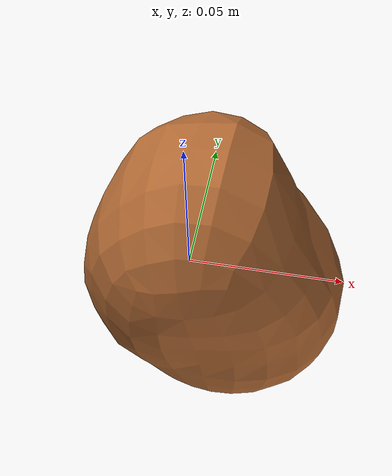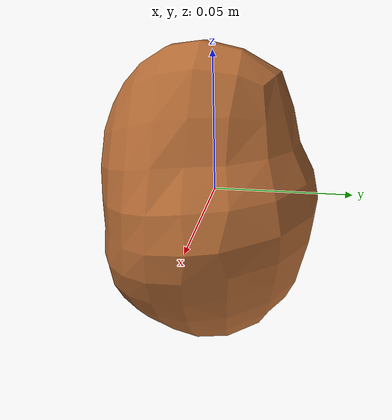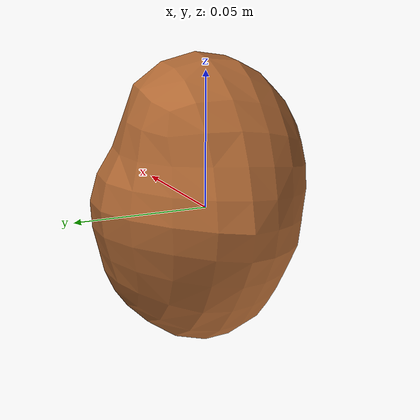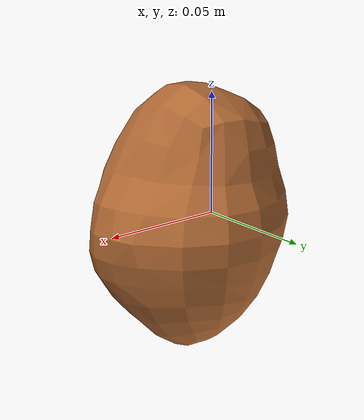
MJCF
<mujoco model="Potato_9">
  <compiler autolimits="true" boundmass="0.01" angle="radian"/>
  <default>
    <default class="/">
      <default class="__VISUAL_MJT__">
        <geom contype="0" conaffinity="0" group="0"/>
      </default>
      <default class="__STRUCTURAL_MJT__">
        <geom contype="8" conaffinity="15" group="4" friction="0.90000000000000002 0.90000000000000002 0.001" solref="0.025000000000000001 1" solimp="0.998 0.998 0.001"/>
      </default>
      <default class="__DYNAMIC_MJT__">
        <geom contype="1" conaffinity="15" group="4" friction="0.90000000000000002 0.90000000000000002 0.001" solref="0.025000000000000001 1" solimp="0.998 0.998 0.001"/>
      </default>
    </default>
  </default>
  <asset>
    <texture name="Potato1_Mat4" type="2d" file="Potato1_AlbedoTransparency.png"/>
    <material name="material_Potato1_Mat4" class="/" texture="Potato1_Mat4" specular="0.5" shininess="0.5" rgba="0.93382350000000003 0.57658390000000004 0.30211939999999998 1"/>
    <mesh name="Potato_9_potato_a9" class="/" file="Potato_9_potato_a9/Potato_9_potato_a9.obj" scale="1 1 1"/>
  </asset>
  <worldbody>
    <body name="Potato_9">
      <joint name="Potato_9_free" class="/" type="free" pos="0 0 0" axis="0 0 1" stiffness="0" range="0 0" armature="0" damping="0.10000000000000001" frictionloss="0"/>
      <body name="Potato_9_potato_a9" pos="0.0039300000000000003 -0.0029399999999999999 -0.0047000000000000002" quat="1 0 0 0">
        <geom name="Potato_9_potato_a9" class="__VISUAL_MJT__" type="mesh" material="material_Potato1_Mat4" shellinertia="true" mesh="Potato_9_potato_a9"/>
        <geom name="Potato_9_PrimitiveCollider_0" class="__DYNAMIC_MJT__" type="capsule" size="0.04027475044131279 0.014813680201768875" rgba="0 1 0 1" pos="0.0039299880154430866 0.0029365075752139091 0.0047027179971337318" quat="1.5172864424591529e-06 0.98892549348994019 0.14841283072339057 -2.1600258383325244e-07"/>
      </body>
    </body>
  </worldbody>
</mujoco>
